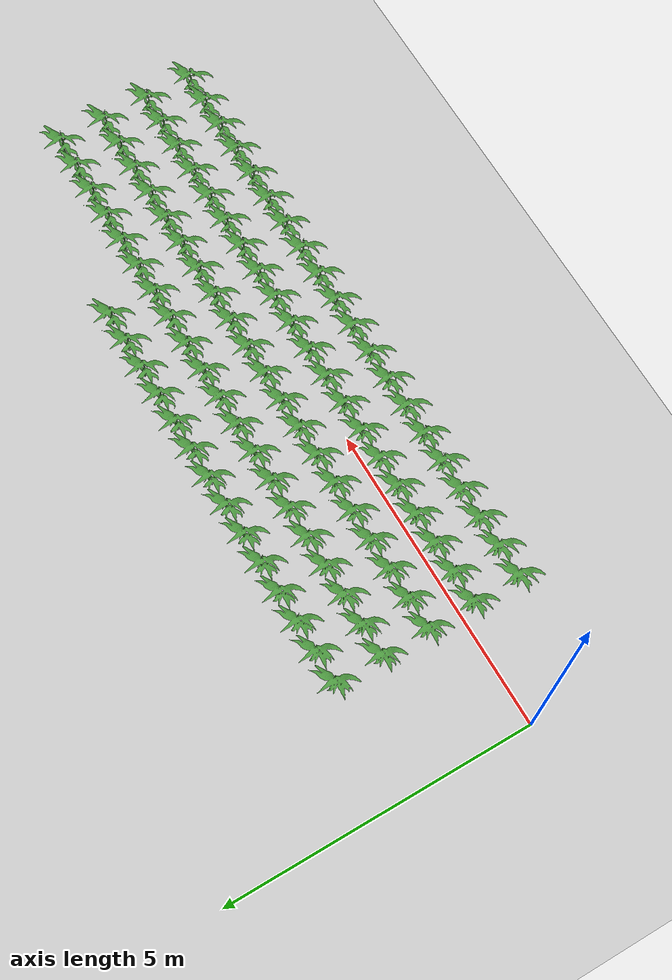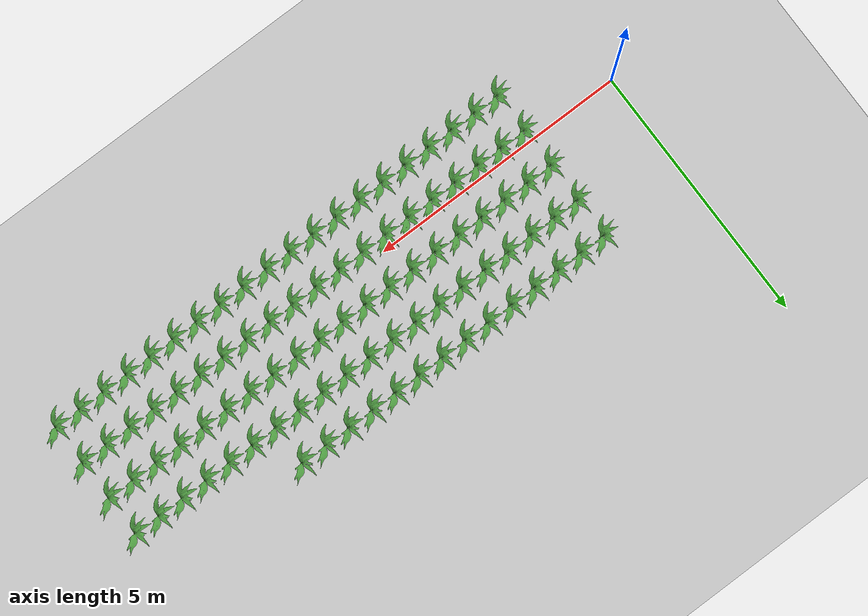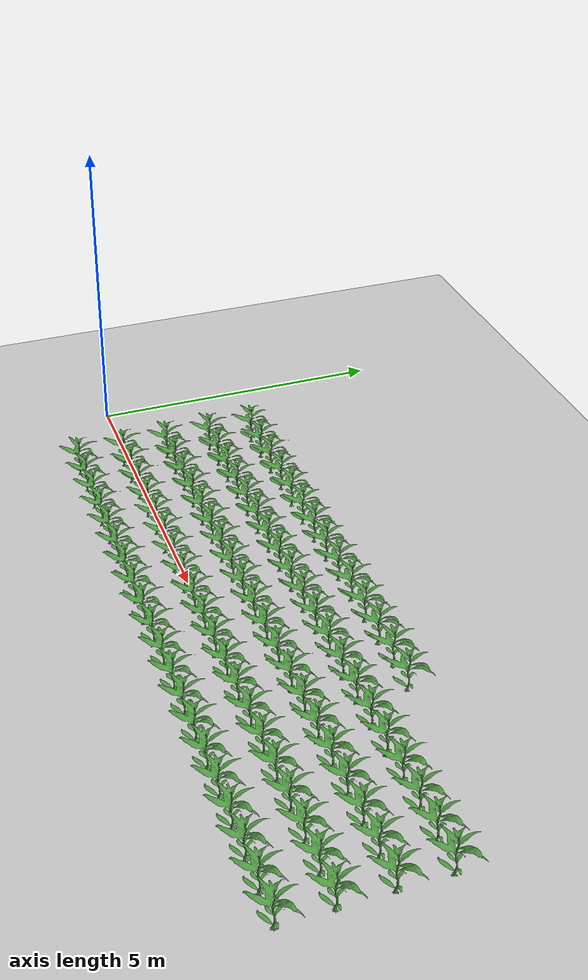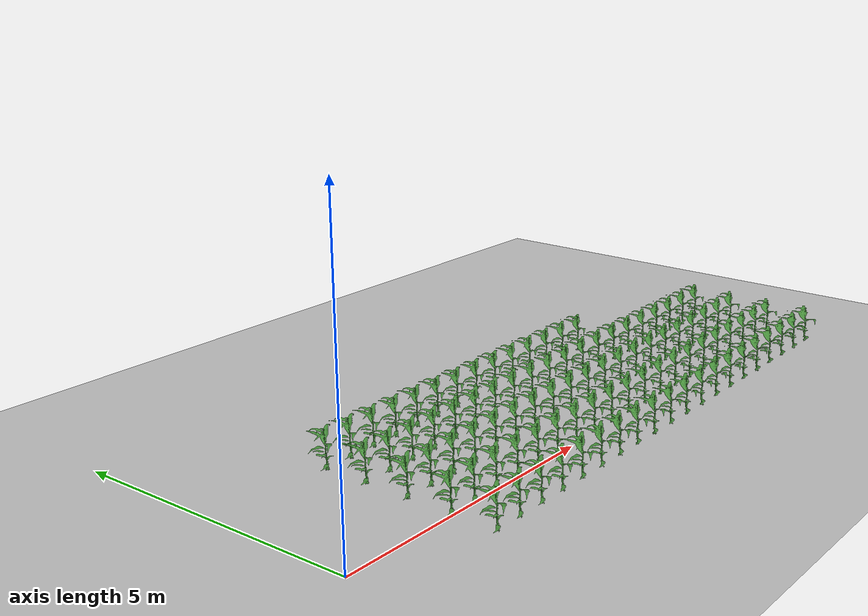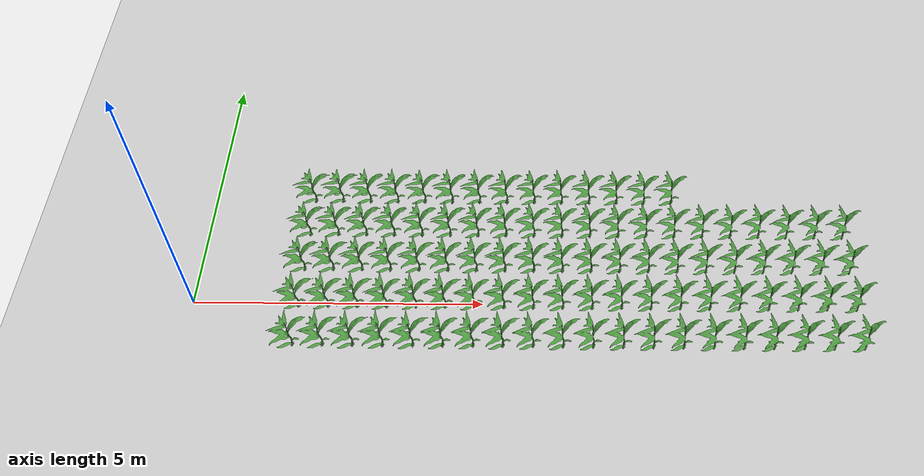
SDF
<sdf version="1.7">
 <world name="default">
  <model name="ground_plane">
   <static>1</static>
   <link name="link">
    <collision name="collision">
     <geometry><plane><normal>0 0 1</normal><size>100 100</size></plane></geometry>
     <surface>
      <contact><collide_bitmask>65535</collide_bitmask></contact>
      <friction><ode><mu>100</mu><mu2>50</mu2></ode></friction>
     </surface>
    </collision>
    <visual name="visual">
     <cast_shadows>0</cast_shadows>
     <geometry><plane><normal>0 0 1</normal><size>100 100</size></plane></geometry>
     <material>
      <script><uri>file://media/materials/scripts/gazebo.material</uri><name>Gazebo/Grey</name></script>
     </material>
    </visual>
   </link>
  </model>
  <model name="bush_1_nc_0">
   <static>1</static>
   <link name="link">
    <visual name="visual">
     <geometry>
      <mesh><uri>model://corn_stalk/meshes/corn_1.obj</uri><scale>0.002 0.002 0.001</scale></mesh>
     </geometry>
     <material>
      <script><uri>file://media/materials/scripts/gazebo.material</uri><name>Gazebo/Grass</name></script>
     </material>
    </visual>
   </link>
   <pose>0.0 0.762 0.171977 0 -0 0</pose>
  </model>
  <model name="bush_1_nc_1">
   <static>1</static>
   <link name="link">
    <visual name="visual">
     <geometry>
      <mesh><uri>model://corn_stalk/meshes/corn_1.obj</uri><scale>0.002 0.002 0.001</scale></mesh>
     </geometry>
     <material>
      <script><uri>file://media/materials/scripts/gazebo.material</uri><name>Gazebo/Grass</name></script>
     </material>
    </visual>
   </link>
   <pose>0.5 0.762 0.171977 0 -0 0</pose>
  </model>
  <model name="bush_1_nc_2">
   <static>1</static>
   <link name="link">
    <visual name="visual">
     <geometry>
      <mesh><uri>model://corn_stalk/meshes/corn_1.obj</uri><scale>0.002 0.002 0.001</scale></mesh>
     </geometry>
     <material>
      <script><uri>file://media/materials/scripts/gazebo.material</uri><name>Gazebo/Grass</name></script>
     </material>
    </visual>
   </link>
   <pose>1.0 0.762 0.171977 0 -0 0</pose>
  </model>
  <model name="bush_1_nc_3">
   <static>1</static>
   <link name="link">
    <visual name="visual">
     <geometry>
      <mesh><uri>model://corn_stalk/meshes/corn_1.obj</uri><scale>0.002 0.002 0.001</scale></mesh>
     </geometry>
     <material>
      <script><uri>file://media/materials/scripts/gazebo.material</uri><name>Gazebo/Grass</name></script>
     </material>
    </visual>
   </link>
   <pose>1.5 0.762 0.171977 0 -0 0</pose>
  </model>
  <model name="bush_1_nc_4">
   <static>1</static>
   <link name="link">
    <visual name="visual">
     <geometry>
      <mesh><uri>model://corn_stalk/meshes/corn_1.obj</uri><scale>0.002 0.002 0.001</scale></mesh>
     </geometry>
     <material>
      <script><uri>file://media/materials/scripts/gazebo.material</uri><name>Gazebo/Grass</name></script>
     </material>
    </visual>
   </link>
   <pose>2.0 0.762 0.171977 0 -0 0</pose>
  </model>
  <model name="bush_1_nc_5">
   <static>1</static>
   <link name="link">
    <visual name="visual">
     <geometry>
      <mesh><uri>model://corn_stalk/meshes/corn_1.obj</uri><scale>0.002 0.002 0.001</scale></mesh>
     </geometry>
     <material>
      <script><uri>file://media/materials/scripts/gazebo.material</uri><name>Gazebo/Grass</name></script>
     </material>
    </visual>
   </link>
   <pose>2.5 0.762 0.171977 0 -0 0</pose>
  </model>
  <model name="bush_1_nc_6">
   <static>1</static>
   <link name="link">
    <visual name="visual">
     <geometry>
      <mesh><uri>model://corn_stalk/meshes/corn_1.obj</uri><scale>0.002 0.002 0.001</scale></mesh>
     </geometry>
     <material>
      <script><uri>file://media/materials/scripts/gazebo.material</uri><name>Gazebo/Grass</name></script>
     </material>
    </visual>
   </link>
   <pose>3.0 0.762 0.171977 0 -0 0</pose>
  </model>
  <model name="bush_1_nc_7">
   <static>1</static>
   <link name="link">
    <visual name="visual">
     <geometry>
      <mesh><uri>model://corn_stalk/meshes/corn_1.obj</uri><scale>0.002 0.002 0.001</scale></mesh>
     </geometry>
     <material>
      <script><uri>file://media/materials/scripts/gazebo.material</uri><name>Gazebo/Grass</name></script>
     </material>
    </visual>
   </link>
   <pose>3.5 0.762 0.171977 0 -0 0</pose>
  </model>
  <model name="bush_1_nc_8">
   <static>1</static>
   <link name="link">
    <visual name="visual">
     <geometry>
      <mesh><uri>model://corn_stalk/meshes/corn_1.obj</uri><scale>0.002 0.002 0.001</scale></mesh>
     </geometry>
     <material>
      <script><uri>file://media/materials/scripts/gazebo.material</uri><name>Gazebo/Grass</name></script>
     </material>
    </visual>
   </link>
   <pose>4.0 0.762 0.171977 0 -0 0</pose>
  </model>
  <model name="bush_1_nc_9">
   <static>1</static>
   <link name="link">
    <visual name="visual">
     <geometry>
      <mesh><uri>model://corn_stalk/meshes/corn_1.obj</uri><scale>0.002 0.002 0.001</scale></mesh>
     </geometry>
     <material>
      <script><uri>file://media/materials/scripts/gazebo.material</uri><name>Gazebo/Grass</name></script>
     </material>
    </visual>
   </link>
   <pose>4.5 0.762 0.171977 0 -0 0</pose>
  </model>
  <model name="bush_1_nc_10">
   <static>1</static>
   <link name="link">
    <visual name="visual">
     <geometry>
      <mesh><uri>model://corn_stalk/meshes/corn_1.obj</uri><scale>0.002 0.002 0.001</scale></mesh>
     </geometry>
     <material>
      <script><uri>file://media/materials/scripts/gazebo.material</uri><name>Gazebo/Grass</name></script>
     </material>
    </visual>
   </link>
   <pose>5.0 0.762 0.171977 0 -0 0</pose>
  </model>
  <model name="bush_1_nc_11">
   <static>1</static>
   <link name="link">
    <visual name="visual">
     <geometry>
      <mesh><uri>model://corn_stalk/meshes/corn_1.obj</uri><scale>0.002 0.002 0.001</scale></mesh>
     </geometry>
     <material>
      <script><uri>file://media/materials/scripts/gazebo.material</uri><name>Gazebo/Grass</name></script>
     </material>
    </visual>
   </link>
   <pose>5.5 0.762 0.171977 0 -0 0</pose>
  </model>
  <model name="bush_1_nc_12">
   <static>1</static>
   <link name="link">
    <visual name="visual">
     <geometry>
      <mesh><uri>model://corn_stalk/meshes/corn_1.obj</uri><scale>0.002 0.002 0.001</scale></mesh>
     </geometry>
     <material>
      <script><uri>file://media/materials/scripts/gazebo.material</uri><name>Gazebo/Grass</name></script>
     </material>
    </visual>
   </link>
   <pose>6.0 0.762 0.171977 0 -0 0</pose>
  </model>
  <model name="bush_1_nc_13">
   <static>1</static>
   <link name="link">
    <visual name="visual">
     <geometry>
      <mesh><uri>model://corn_stalk/meshes/corn_1.obj</uri><scale>0.002 0.002 0.001</scale></mesh>
     </geometry>
     <material>
      <script><uri>file://media/materials/scripts/gazebo.material</uri><name>Gazebo/Grass</name></script>
     </material>
    </visual>
   </link>
   <pose>6.5 0.762 0.171977 0 -0 0</pose>
  </model>
  <model name="bush_1_nc_14">
   <static>1</static>
   <link name="link">
    <visual name="visual">
     <geometry>
      <mesh><uri>model://corn_stalk/meshes/corn_1.obj</uri><scale>0.002 0.002 0.001</scale></mesh>
     </geometry>
     <material>
      <script><uri>file://media/materials/scripts/gazebo.material</uri><name>Gazebo/Grass</name></script>
     </material>
    </visual>
   </link>
   <pose>7.0 0.762 0.171977 0 -0 0</pose>
  </model>
  <model name="bush_1_nc_15">
   <static>1</static>
   <link name="link">
    <visual name="visual">
     <geometry>
      <mesh><uri>model://corn_stalk/meshes/corn_1.obj</uri><scale>0.002 0.002 0.001</scale></mesh>
     </geometry>
     <material>
      <script><uri>file://media/materials/scripts/gazebo.material</uri><name>Gazebo/Grass</name></script>
     </material>
    </visual>
   </link>
   <pose>7.5 0.762 0.171977 0 -0 0</pose>
  </model>
  <model name="bush_1_nc_16">
   <static>1</static>
   <link name="link">
    <visual name="visual">
     <geometry>
      <mesh><uri>model://corn_stalk/meshes/corn_1.obj</uri><scale>0.002 0.002 0.001</scale></mesh>
     </geometry>
     <material>
      <script><uri>file://media/materials/scripts/gazebo.material</uri><name>Gazebo/Grass</name></script>
     </material>
    </visual>
   </link>
   <pose>8.0 0.762 0.171977 0 -0 0</pose>
  </model>
  <model name="bush_1_nc_17">
   <static>1</static>
   <link name="link">
    <visual name="visual">
     <geometry>
      <mesh><uri>model://corn_stalk/meshes/corn_1.obj</uri><scale>0.002 0.002 0.001</scale></mesh>
     </geometry>
     <material>
      <script><uri>file://media/materials/scripts/gazebo.material</uri><name>Gazebo/Grass</name></script>
     </material>
    </visual>
   </link>
   <pose>8.5 0.762 0.171977 0 -0 0</pose>
  </model>
  <model name="bush_1_nc_18">
   <static>1</static>
   <link name="link">
    <visual name="visual">
     <geometry>
      <mesh><uri>model://corn_stalk/meshes/corn_1.obj</uri><scale>0.002 0.002 0.001</scale></mesh>
     </geometry>
     <material>
      <script><uri>file://media/materials/scripts/gazebo.material</uri><name>Gazebo/Grass</name></script>
     </material>
    </visual>
   </link>
   <pose>9.0 0.762 0.171977 0 -0 0</pose>
  </model>
  <model name="bush_1_nc_19">
   <static>1</static>
   <link name="link">
    <visual name="visual">
     <geometry>
      <mesh><uri>model://corn_stalk/meshes/corn_1.obj</uri><scale>0.002 0.002 0.001</scale></mesh>
     </geometry>
     <material>
      <script><uri>file://media/materials/scripts/gazebo.material</uri><name>Gazebo/Grass</name></script>
     </material>
    </visual>
   </link>
   <pose>9.5 0.762 0.171977 0 -0 0</pose>
  </model>
  <model name="bush_1_nc_40">
   <static>1</static>
   <link name="link">
    <visual name="visual">
     <geometry>
      <mesh><uri>model://corn_stalk/meshes/corn_1.obj</uri><scale>0.002 0.002 0.001</scale></mesh>
     </geometry>
     <material>
      <script><uri>file://media/materials/scripts/gazebo.material</uri><name>Gazebo/Grass</name></script>
     </material>
    </visual>
   </link>
   <pose>0.0 1.524 0.171977 0 -0 0</pose>
  </model>
  <model name="bush_1_nc_41">
   <static>1</static>
   <link name="link">
    <visual name="visual">
     <geometry>
      <mesh><uri>model://corn_stalk/meshes/corn_1.obj</uri><scale>0.002 0.002 0.001</scale></mesh>
     </geometry>
     <material>
      <script><uri>file://media/materials/scripts/gazebo.material</uri><name>Gazebo/Grass</name></script>
     </material>
    </visual>
   </link>
   <pose>0.5 1.524 0.171977 0 -0 0</pose>
  </model>
  <model name="bush_1_nc_42">
   <static>1</static>
   <link name="link">
    <visual name="visual">
     <geometry>
      <mesh><uri>model://corn_stalk/meshes/corn_1.obj</uri><scale>0.002 0.002 0.001</scale></mesh>
     </geometry>
     <material>
      <script><uri>file://media/materials/scripts/gazebo.material</uri><name>Gazebo/Grass</name></script>
     </material>
    </visual>
   </link>
   <pose>1.0 1.524 0.171977 0 -0 0</pose>
  </model>
  <model name="bush_1_nc_43">
   <static>1</static>
   <link name="link">
    <visual name="visual">
     <geometry>
      <mesh><uri>model://corn_stalk/meshes/corn_1.obj</uri><scale>0.002 0.002 0.001</scale></mesh>
     </geometry>
     <material>
      <script><uri>file://media/materials/scripts/gazebo.material</uri><name>Gazebo/Grass</name></script>
     </material>
    </visual>
   </link>
   <pose>1.5 1.524 0.171977 0 -0 0</pose>
  </model>
  <model name="bush_1_nc_44">
   <static>1</static>
   <link name="link">
    <visual name="visual">
     <geometry>
      <mesh><uri>model://corn_stalk/meshes/corn_1.obj</uri><scale>0.002 0.002 0.001</scale></mesh>
     </geometry>
     <material>
      <script><uri>file://media/materials/scripts/gazebo.material</uri><name>Gazebo/Grass</name></script>
     </material>
    </visual>
   </link>
   <pose>2.0 1.524 0.171977 0 -0 0</pose>
  </model>
  <model name="bush_1_nc_45">
   <static>1</static>
   <link name="link">
    <visual name="visual">
     <geometry>
      <mesh><uri>model://corn_stalk/meshes/corn_1.obj</uri><scale>0.002 0.002 0.001</scale></mesh>
     </geometry>
     <material>
      <script><uri>file://media/materials/scripts/gazebo.material</uri><name>Gazebo/Grass</name></script>
     </material>
    </visual>
   </link>
   <pose>2.5 1.524 0.171977 0 -0 0</pose>
  </model>
  <model name="bush_1_nc_46">
   <static>1</static>
   <link name="link">
    <visual name="visual">
     <geometry>
      <mesh><uri>model://corn_stalk/meshes/corn_1.obj</uri><scale>0.002 0.002 0.001</scale></mesh>
     </geometry>
     <material>
      <script><uri>file://media/materials/scripts/gazebo.material</uri><name>Gazebo/Grass</name></script>
     </material>
    </visual>
   </link>
   <pose>3.0 1.524 0.171977 0 -0 0</pose>
  </model>
  <model name="bush_1_nc_47">
   <static>1</static>
   <link name="link">
    <visual name="visual">
     <geometry>
      <mesh><uri>model://corn_stalk/meshes/corn_1.obj</uri><scale>0.002 0.002 0.001</scale></mesh>
     </geometry>
     <material>
      <script><uri>file://media/materials/scripts/gazebo.material</uri><name>Gazebo/Grass</name></script>
     </material>
    </visual>
   </link>
   <pose>3.5 1.524 0.171977 0 -0 0</pose>
  </model>
  <model name="bush_1_nc_48">
   <static>1</static>
   <link name="link">
    <visual name="visual">
     <geometry>
      <mesh><uri>model://corn_stalk/meshes/corn_1.obj</uri><scale>0.002 0.002 0.001</scale></mesh>
     </geometry>
     <material>
      <script><uri>file://media/materials/scripts/gazebo.material</uri><name>Gazebo/Grass</name></script>
     </material>
    </visual>
   </link>
   <pose>4.0 1.524 0.171977 0 -0 0</pose>
  </model>
  <model name="bush_1_nc_49">
   <static>1</static>
   <link name="link">
    <visual name="visual">
     <geometry>
      <mesh><uri>model://corn_stalk/meshes/corn_1.obj</uri><scale>0.002 0.002 0.001</scale></mesh>
     </geometry>
     <material>
      <script><uri>file://media/materials/scripts/gazebo.material</uri><name>Gazebo/Grass</name></script>
     </material>
    </visual>
   </link>
   <pose>4.5 1.524 0.171977 0 -0 0</pose>
  </model>
  <model name="bush_1_nc_50">
   <static>1</static>
   <link name="link">
    <visual name="visual">
     <geometry>
      <mesh><uri>model://corn_stalk/meshes/corn_1.obj</uri><scale>0.002 0.002 0.001</scale></mesh>
     </geometry>
     <material>
      <script><uri>file://media/materials/scripts/gazebo.material</uri><name>Gazebo/Grass</name></script>
     </material>
    </visual>
   </link>
   <pose>5.0 1.524 0.171977 0 -0 0</pose>
  </model>
  <model name="bush_1_nc_51">
   <static>1</static>
   <link name="link">
    <visual name="visual">
     <geometry>
      <mesh><uri>model://corn_stalk/meshes/corn_1.obj</uri><scale>0.002 0.002 0.001</scale></mesh>
     </geometry>
     <material>
      <script><uri>file://media/materials/scripts/gazebo.material</uri><name>Gazebo/Grass</name></script>
     </material>
    </visual>
   </link>
   <pose>5.5 1.524 0.171977 0 -0 0</pose>
  </model>
  <model name="bush_1_nc_52">
   <static>1</static>
   <link name="link">
    <visual name="visual">
     <geometry>
      <mesh><uri>model://corn_stalk/meshes/corn_1.obj</uri><scale>0.002 0.002 0.001</scale></mesh>
     </geometry>
     <material>
      <script><uri>file://media/materials/scripts/gazebo.material</uri><name>Gazebo/Grass</name></script>
     </material>
    </visual>
   </link>
   <pose>6.0 1.524 0.171977 0 -0 0</pose>
  </model>
  <model name="bush_1_nc_53">
   <static>1</static>
   <link name="link">
    <visual name="visual">
     <geometry>
      <mesh><uri>model://corn_stalk/meshes/corn_1.obj</uri><scale>0.002 0.002 0.001</scale></mesh>
     </geometry>
     <material>
      <script><uri>file://media/materials/scripts/gazebo.material</uri><name>Gazebo/Grass</name></script>
     </material>
    </visual>
   </link>
   <pose>6.5 1.524 0.171977 0 -0 0</pose>
  </model>
  <model name="bush_1_nc_54">
   <static>1</static>
   <link name="link">
    <visual name="visual">
     <geometry>
      <mesh><uri>model://corn_stalk/meshes/corn_1.obj</uri><scale>0.002 0.002 0.001</scale></mesh>
     </geometry>
     <material>
      <script><uri>file://media/materials/scripts/gazebo.material</uri><name>Gazebo/Grass</name></script>
     </material>
    </visual>
   </link>
   <pose>7.0 1.524 0.171977 0 -0 0</pose>
  </model>
  <model name="bush_1_nc_55">
   <static>1</static>
   <link name="link">
    <visual name="visual">
     <geometry>
      <mesh><uri>model://corn_stalk/meshes/corn_1.obj</uri><scale>0.002 0.002 0.001</scale></mesh>
     </geometry>
     <material>
      <script><uri>file://media/materials/scripts/gazebo.material</uri><name>Gazebo/Grass</name></script>
     </material>
    </visual>
   </link>
   <pose>7.5 1.524 0.171977 0 -0 0</pose>
  </model>
  <model name="bush_1_nc_56">
   <static>1</static>
   <link name="link">
    <visual name="visual">
     <geometry>
      <mesh><uri>model://corn_stalk/meshes/corn_1.obj</uri><scale>0.002 0.002 0.001</scale></mesh>
     </geometry>
     <material>
      <script><uri>file://media/materials/scripts/gazebo.material</uri><name>Gazebo/Grass</name></script>
     </material>
    </visual>
   </link>
   <pose>8.0 1.524 0.171977 0 -0 0</pose>
  </model>
  <model name="bush_1_nc_57">
   <static>1</static>
   <link name="link">
    <visual name="visual">
     <geometry>
      <mesh><uri>model://corn_stalk/meshes/corn_1.obj</uri><scale>0.002 0.002 0.001</scale></mesh>
     </geometry>
     <material>
      <script><uri>file://media/materials/scripts/gazebo.material</uri><name>Gazebo/Grass</name></script>
     </material>
    </visual>
   </link>
   <pose>8.5 1.524 0.171977 0 -0 0</pose>
  </model>
  <model name="bush_1_nc_58">
   <static>1</static>
   <link name="link">
    <visual name="visual">
     <geometry>
      <mesh><uri>model://corn_stalk/meshes/corn_1.obj</uri><scale>0.002 0.002 0.001</scale></mesh>
     </geometry>
     <material>
      <script><uri>file://media/materials/scripts/gazebo.material</uri><name>Gazebo/Grass</name></script>
     </material>
    </visual>
   </link>
   <pose>9.0 1.524 0.171977 0 -0 0</pose>
  </model>
  <model name="bush_1_nc_59">
   <static>1</static>
   <link name="link">
    <visual name="visual">
     <geometry>
      <mesh><uri>model://corn_stalk/meshes/corn_1.obj</uri><scale>0.002 0.002 0.001</scale></mesh>
     </geometry>
     <material>
      <script><uri>file://media/materials/scripts/gazebo.material</uri><name>Gazebo/Grass</name></script>
     </material>
    </visual>
   </link>
   <pose>9.5 1.524 0.171977 0 -0 0</pose>
  </model>
  <model name="bush_1_nc_80">
   <static>1</static>
   <link name="link">
    <visual name="visual">
     <geometry>
      <mesh><uri>model://corn_stalk/meshes/corn_1.obj</uri><scale>0.002 0.002 0.001</scale></mesh>
     </geometry>
     <material>
      <script><uri>file://media/materials/scripts/gazebo.material</uri><name>Gazebo/Grass</name></script>
     </material>
    </visual>
   </link>
   <pose>0.0 2.286 0.171977 0 -0 0</pose>
  </model>
  <model name="bush_1_nc_81">
   <static>1</static>
   <link name="link">
    <visual name="visual">
     <geometry>
      <mesh><uri>model://corn_stalk/meshes/corn_1.obj</uri><scale>0.002 0.002 0.001</scale></mesh>
     </geometry>
     <material>
      <script><uri>file://media/materials/scripts/gazebo.material</uri><name>Gazebo/Grass</name></script>
     </material>
    </visual>
   </link>
   <pose>0.5 2.286 0.171977 0 -0 0</pose>
  </model>
  <model name="bush_1_nc_82">
   <static>1</static>
   <link name="link">
    <visual name="visual">
     <geometry>
      <mesh><uri>model://corn_stalk/meshes/corn_1.obj</uri><scale>0.002 0.002 0.001</scale></mesh>
     </geometry>
     <material>
      <script><uri>file://media/materials/scripts/gazebo.material</uri><name>Gazebo/Grass</name></script>
     </material>
    </visual>
   </link>
   <pose>1.0 2.286 0.171977 0 -0 0</pose>
  </model>
  <model name="bush_1_nc_83">
   <static>1</static>
   <link name="link">
    <visual name="visual">
     <geometry>
      <mesh><uri>model://corn_stalk/meshes/corn_1.obj</uri><scale>0.002 0.002 0.001</scale></mesh>
     </geometry>
     <material>
      <script><uri>file://media/materials/scripts/gazebo.material</uri><name>Gazebo/Grass</name></script>
     </material>
    </visual>
   </link>
   <pose>1.5 2.286 0.171977 0 -0 0</pose>
  </model>
  <model name="bush_1_nc_84">
   <static>1</static>
   <link name="link">
    <visual name="visual">
     <geometry>
      <mesh><uri>model://corn_stalk/meshes/corn_1.obj</uri><scale>0.002 0.002 0.001</scale></mesh>
     </geometry>
     <material>
      <script><uri>file://media/materials/scripts/gazebo.material</uri><name>Gazebo/Grass</name></script>
     </material>
    </visual>
   </link>
   <pose>2.0 2.286 0.171977 0 -0 0</pose>
  </model>
  <model name="bush_1_nc_85">
   <static>1</static>
   <link name="link">
    <visual name="visual">
     <geometry>
      <mesh><uri>model://corn_stalk/meshes/corn_1.obj</uri><scale>0.002 0.002 0.001</scale></mesh>
     </geometry>
     <material>
      <script><uri>file://media/materials/scripts/gazebo.material</uri><name>Gazebo/Grass</name></script>
     </material>
    </visual>
   </link>
   <pose>2.5 2.286 0.171977 0 -0 0</pose>
  </model>
  <model name="bush_1_nc_86">
   <static>1</static>
   <link name="link">
    <visual name="visual">
     <geometry>
      <mesh><uri>model://corn_stalk/meshes/corn_1.obj</uri><scale>0.002 0.002 0.001</scale></mesh>
     </geometry>
     <material>
      <script><uri>file://media/materials/scripts/gazebo.material</uri><name>Gazebo/Grass</name></script>
     </material>
    </visual>
   </link>
   <pose>3.0 2.286 0.171977 0 -0 0</pose>
  </model>
  <model name="bush_1_nc_87">
   <static>1</static>
   <link name="link">
    <visual name="visual">
     <geometry>
      <mesh><uri>model://corn_stalk/meshes/corn_1.obj</uri><scale>0.002 0.002 0.001</scale></mesh>
     </geometry>
     <material>
      <script><uri>file://media/materials/scripts/gazebo.material</uri><name>Gazebo/Grass</name></script>
     </material>
    </visual>
   </link>
   <pose>3.5 2.286 0.171977 0 -0 0</pose>
  </model>
  <model name="bush_1_nc_88">
   <static>1</static>
   <link name="link">
    <visual name="visual">
     <geometry>
      <mesh><uri>model://corn_stalk/meshes/corn_1.obj</uri><scale>0.002 0.002 0.001</scale></mesh>
     </geometry>
     <material>
      <script><uri>file://media/materials/scripts/gazebo.material</uri><name>Gazebo/Grass</name></script>
     </material>
    </visual>
   </link>
   <pose>4.0 2.286 0.171977 0 -0 0</pose>
  </model>
  <model name="bush_1_nc_89">
   <static>1</static>
   <link name="link">
    <visual name="visual">
     <geometry>
      <mesh><uri>model://corn_stalk/meshes/corn_1.obj</uri><scale>0.002 0.002 0.001</scale></mesh>
     </geometry>
     <material>
      <script><uri>file://media/materials/scripts/gazebo.material</uri><name>Gazebo/Grass</name></script>
     </material>
    </visual>
   </link>
   <pose>4.5 2.286 0.171977 0 -0 0</pose>
  </model>
  <model name="bush_1_nc_90">
   <static>1</static>
   <link name="link">
    <visual name="visual">
     <geometry>
      <mesh><uri>model://corn_stalk/meshes/corn_1.obj</uri><scale>0.002 0.002 0.001</scale></mesh>
     </geometry>
     <material>
      <script><uri>file://media/materials/scripts/gazebo.material</uri><name>Gazebo/Grass</name></script>
     </material>
    </visual>
   </link>
   <pose>5.0 2.286 0.171977 0 -0 0</pose>
  </model>
  <model name="bush_1_nc_91">
   <static>1</static>
   <link name="link">
    <visual name="visual">
     <geometry>
      <mesh><uri>model://corn_stalk/meshes/corn_1.obj</uri><scale>0.002 0.002 0.001</scale></mesh>
     </geometry>
     <material>
      <script><uri>file://media/materials/scripts/gazebo.material</uri><name>Gazebo/Grass</name></script>
     </material>
    </visual>
   </link>
   <pose>5.5 2.286 0.171977 0 -0 0</pose>
  </model>
  <model name="bush_1_nc_92">
   <static>1</static>
   <link name="link">
    <visual name="visual">
     <geometry>
      <mesh><uri>model://corn_stalk/meshes/corn_1.obj</uri><scale>0.002 0.002 0.001</scale></mesh>
     </geometry>
     <material>
      <script><uri>file://media/materials/scripts/gazebo.material</uri><name>Gazebo/Grass</name></script>
     </material>
    </visual>
   </link>
   <pose>6.0 2.286 0.171977 0 -0 0</pose>
  </model>
  <model name="bush_1_nc_93">
   <static>1</static>
   <link name="link">
    <visual name="visual">
     <geometry>
      <mesh><uri>model://corn_stalk/meshes/corn_1.obj</uri><scale>0.002 0.002 0.001</scale></mesh>
     </geometry>
     <material>
      <script><uri>file://media/materials/scripts/gazebo.material</uri><name>Gazebo/Grass</name></script>
     </material>
    </visual>
   </link>
   <pose>6.5 2.286 0.171977 0 -0 0</pose>
  </model>
  <model name="bush_1_nc_94">
   <static>1</static>
   <link name="link">
    <visual name="visual">
     <geometry>
      <mesh><uri>model://corn_stalk/meshes/corn_1.obj</uri><scale>0.002 0.002 0.001</scale></mesh>
     </geometry>
     <material>
      <script><uri>file://media/materials/scripts/gazebo.material</uri><name>Gazebo/Grass</name></script>
     </material>
    </visual>
   </link>
   <pose>7.0 2.286 0.171977 0 -0 0</pose>
  </model>
  <model name="bush_1_nc_95">
   <static>1</static>
   <link name="link">
    <visual name="visual">
     <geometry>
      <mesh><uri>model://corn_stalk/meshes/corn_1.obj</uri><scale>0.002 0.002 0.001</scale></mesh>
     </geometry>
     <material>
      <script><uri>file://media/materials/scripts/gazebo.material</uri><name>Gazebo/Grass</name></script>
     </material>
    </visual>
   </link>
   <pose>7.5 2.286 0.171977 0 -0 0</pose>
  </model>
  <model name="bush_1_nc_96">
   <static>1</static>
   <link name="link">
    <visual name="visual">
     <geometry>
      <mesh><uri>model://corn_stalk/meshes/corn_1.obj</uri><scale>0.002 0.002 0.001</scale></mesh>
     </geometry>
     <material>
      <script><uri>file://media/materials/scripts/gazebo.material</uri><name>Gazebo/Grass</name></script>
     </material>
    </visual>
   </link>
   <pose>8.0 2.286 0.171977 0 -0 0</pose>
  </model>
  <model name="bush_1_nc_97">
   <static>1</static>
   <link name="link">
    <visual name="visual">
     <geometry>
      <mesh><uri>model://corn_stalk/meshes/corn_1.obj</uri><scale>0.002 0.002 0.001</scale></mesh>
     </geometry>
     <material>
      <script><uri>file://media/materials/scripts/gazebo.material</uri><name>Gazebo/Grass</name></script>
     </material>
    </visual>
   </link>
   <pose>8.5 2.286 0.171977 0 -0 0</pose>
  </model>
  <model name="bush_1_nc_98">
   <static>1</static>
   <link name="link">
    <visual name="visual">
     <geometry>
      <mesh><uri>model://corn_stalk/meshes/corn_1.obj</uri><scale>0.002 0.002 0.001</scale></mesh>
     </geometry>
     <material>
      <script><uri>file://media/materials/scripts/gazebo.material</uri><name>Gazebo/Grass</name></script>
     </material>
    </visual>
   </link>
   <pose>9.0 2.286 0.171977 0 -0 0</pose>
  </model>
  <model name="bush_1_nc_99">
   <static>1</static>
   <link name="link">
    <visual name="visual">
     <geometry>
      <mesh><uri>model://corn_stalk/meshes/corn_1.obj</uri><scale>0.002 0.002 0.001</scale></mesh>
     </geometry>
     <material>
      <script><uri>file://media/materials/scripts/gazebo.material</uri><name>Gazebo/Grass</name></script>
     </material>
    </visual>
   </link>
   <pose>9.5 2.286 0.171977 0 -0 0</pose>
  </model>
  <model name="bush_1_nc_120">
   <static>1</static>
   <link name="link">
    <visual name="visual">
     <geometry>
      <mesh><uri>model://corn_stalk/meshes/corn_1.obj</uri><scale>0.002 0.002 0.001</scale></mesh>
     </geometry>
     <material>
      <script><uri>file://media/materials/scripts/gazebo.material</uri><name>Gazebo/Grass</name></script>
     </material>
    </visual>
   </link>
   <pose>0.0 3.048 0.171977 0 -0 0</pose>
  </model>
  <model name="bush_1_nc_121">
   <static>1</static>
   <link name="link">
    <visual name="visual">
     <geometry>
      <mesh><uri>model://corn_stalk/meshes/corn_1.obj</uri><scale>0.002 0.002 0.001</scale></mesh>
     </geometry>
     <material>
      <script><uri>file://media/materials/scripts/gazebo.material</uri><name>Gazebo/Grass</name></script>
     </material>
    </visual>
   </link>
   <pose>0.5 3.048 0.171977 0 -0 0</pose>
  </model>
  <model name="bush_1_nc_122">
   <static>1</static>
   <link name="link">
    <visual name="visual">
     <geometry>
      <mesh><uri>model://corn_stalk/meshes/corn_1.obj</uri><scale>0.002 0.002 0.001</scale></mesh>
     </geometry>
     <material>
      <script><uri>file://media/materials/scripts/gazebo.material</uri><name>Gazebo/Grass</name></script>
     </material>
    </visual>
   </link>
   <pose>1.0 3.048 0.171977 0 -0 0</pose>
  </model>
  <model name="bush_1_nc_123">
   <static>1</static>
   <link name="link">
    <visual name="visual">
     <geometry>
      <mesh><uri>model://corn_stalk/meshes/corn_1.obj</uri><scale>0.002 0.002 0.001</scale></mesh>
     </geometry>
     <material>
      <script><uri>file://media/materials/scripts/gazebo.material</uri><name>Gazebo/Grass</name></script>
     </material>
    </visual>
   </link>
   <pose>1.5 3.048 0.171977 0 -0 0</pose>
  </model>
  <model name="bush_1_nc_124">
   <static>1</static>
   <link name="link">
    <visual name="visual">
     <geometry>
      <mesh><uri>model://corn_stalk/meshes/corn_1.obj</uri><scale>0.002 0.002 0.001</scale></mesh>
     </geometry>
     <material>
      <script><uri>file://media/materials/scripts/gazebo.material</uri><name>Gazebo/Grass</name></script>
     </material>
    </visual>
   </link>
   <pose>2.0 3.048 0.171977 0 -0 0</pose>
  </model>
  <model name="bush_1_nc_125">
   <static>1</static>
   <link name="link">
    <visual name="visual">
     <geometry>
      <mesh><uri>model://corn_stalk/meshes/corn_1.obj</uri><scale>0.002 0.002 0.001</scale></mesh>
     </geometry>
     <material>
      <script><uri>file://media/materials/scripts/gazebo.material</uri><name>Gazebo/Grass</name></script>
     </material>
    </visual>
   </link>
   <pose>2.5 3.048 0.171977 0 -0 0</pose>
  </model>
  <model name="bush_1_nc_126">
   <static>1</static>
   <link name="link">
    <visual name="visual">
     <geometry>
      <mesh><uri>model://corn_stalk/meshes/corn_1.obj</uri><scale>0.002 0.002 0.001</scale></mesh>
     </geometry>
     <material>
      <script><uri>file://media/materials/scripts/gazebo.material</uri><name>Gazebo/Grass</name></script>
     </material>
    </visual>
   </link>
   <pose>3.0 3.048 0.171977 0 -0 0</pose>
  </model>
  <model name="bush_1_nc_127">
   <static>1</static>
   <link name="link">
    <visual name="visual">
     <geometry>
      <mesh><uri>model://corn_stalk/meshes/corn_1.obj</uri><scale>0.002 0.002 0.001</scale></mesh>
     </geometry>
     <material>
      <script><uri>file://media/materials/scripts/gazebo.material</uri><name>Gazebo/Grass</name></script>
     </material>
    </visual>
   </link>
   <pose>3.5 3.048 0.171977 0 -0 0</pose>
  </model>
  <model name="bush_1_nc_128">
   <static>1</static>
   <link name="link">
    <visual name="visual">
     <geometry>
      <mesh><uri>model://corn_stalk/meshes/corn_1.obj</uri><scale>0.002 0.002 0.001</scale></mesh>
     </geometry>
     <material>
      <script><uri>file://media/materials/scripts/gazebo.material</uri><name>Gazebo/Grass</name></script>
     </material>
    </visual>
   </link>
   <pose>4.0 3.048 0.171977 0 -0 0</pose>
  </model>
  <model name="bush_1_nc_129">
   <static>1</static>
   <link name="link">
    <visual name="visual">
     <geometry>
      <mesh><uri>model://corn_stalk/meshes/corn_1.obj</uri><scale>0.002 0.002 0.001</scale></mesh>
     </geometry>
     <material>
      <script><uri>file://media/materials/scripts/gazebo.material</uri><name>Gazebo/Grass</name></script>
     </material>
    </visual>
   </link>
   <pose>4.5 3.048 0.171977 0 -0 0</pose>
  </model>
  <model name="bush_1_nc_130">
   <static>1</static>
   <link name="link">
    <visual name="visual">
     <geometry>
      <mesh><uri>model://corn_stalk/meshes/corn_1.obj</uri><scale>0.002 0.002 0.001</scale></mesh>
     </geometry>
     <material>
      <script><uri>file://media/materials/scripts/gazebo.material</uri><name>Gazebo/Grass</name></script>
     </material>
    </visual>
   </link>
   <pose>5.0 3.048 0.171977 0 -0 0</pose>
  </model>
  <model name="bush_1_nc_131">
   <static>1</static>
   <link name="link">
    <visual name="visual">
     <geometry>
      <mesh><uri>model://corn_stalk/meshes/corn_1.obj</uri><scale>0.002 0.002 0.001</scale></mesh>
     </geometry>
     <material>
      <script><uri>file://media/materials/scripts/gazebo.material</uri><name>Gazebo/Grass</name></script>
     </material>
    </visual>
   </link>
   <pose>5.5 3.048 0.171977 0 -0 0</pose>
  </model>
  <model name="bush_1_nc_132">
   <static>1</static>
   <link name="link">
    <visual name="visual">
     <geometry>
      <mesh><uri>model://corn_stalk/meshes/corn_1.obj</uri><scale>0.002 0.002 0.001</scale></mesh>
     </geometry>
     <material>
      <script><uri>file://media/materials/scripts/gazebo.material</uri><name>Gazebo/Grass</name></script>
     </material>
    </visual>
   </link>
   <pose>6.0 3.048 0.171977 0 -0 0</pose>
  </model>
  <model name="bush_1_nc_133">
   <static>1</static>
   <link name="link">
    <visual name="visual">
     <geometry>
      <mesh><uri>model://corn_stalk/meshes/corn_1.obj</uri><scale>0.002 0.002 0.001</scale></mesh>
     </geometry>
     <material>
      <script><uri>file://media/materials/scripts/gazebo.material</uri><name>Gazebo/Grass</name></script>
     </material>
    </visual>
   </link>
   <pose>6.5 3.048 0.171977 0 -0 0</pose>
  </model>
  <model name="bush_1_nc_134">
   <static>1</static>
   <link name="link">
    <visual name="visual">
     <geometry>
      <mesh><uri>model://corn_stalk/meshes/corn_1.obj</uri><scale>0.002 0.002 0.001</scale></mesh>
     </geometry>
     <material>
      <script><uri>file://media/materials/scripts/gazebo.material</uri><name>Gazebo/Grass</name></script>
     </material>
    </visual>
   </link>
   <pose>7.0 3.048 0.171977 0 -0 0</pose>
  </model>
  <model name="bush_1_nc_135">
   <static>1</static>
   <link name="link">
    <visual name="visual">
     <geometry>
      <mesh><uri>model://corn_stalk/meshes/corn_1.obj</uri><scale>0.002 0.002 0.001</scale></mesh>
     </geometry>
     <material>
      <script><uri>file://media/materials/scripts/gazebo.material</uri><name>Gazebo/Grass</name></script>
     </material>
    </visual>
   </link>
   <pose>7.5 3.048 0.171977 0 -0 0</pose>
  </model>
  <model name="bush_1_nc_136">
   <static>1</static>
   <link name="link">
    <visual name="visual">
     <geometry>
      <mesh><uri>model://corn_stalk/meshes/corn_1.obj</uri><scale>0.002 0.002 0.001</scale></mesh>
     </geometry>
     <material>
      <script><uri>file://media/materials/scripts/gazebo.material</uri><name>Gazebo/Grass</name></script>
     </material>
    </visual>
   </link>
   <pose>8.0 3.048 0.171977 0 -0 0</pose>
  </model>
  <model name="bush_1_nc_137">
   <static>1</static>
   <link name="link">
    <visual name="visual">
     <geometry>
      <mesh><uri>model://corn_stalk/meshes/corn_1.obj</uri><scale>0.002 0.002 0.001</scale></mesh>
     </geometry>
     <material>
      <script><uri>file://media/materials/scripts/gazebo.material</uri><name>Gazebo/Grass</name></script>
     </material>
    </visual>
   </link>
   <pose>8.5 3.048 0.171977 0 -0 0</pose>
  </model>
  <model name="bush_1_nc_138">
   <static>1</static>
   <link name="link">
    <visual name="visual">
     <geometry>
      <mesh><uri>model://corn_stalk/meshes/corn_1.obj</uri><scale>0.002 0.002 0.001</scale></mesh>
     </geometry>
     <material>
      <script><uri>file://media/materials/scripts/gazebo.material</uri><name>Gazebo/Grass</name></script>
     </material>
    </visual>
   </link>
   <pose>9.0 3.048 0.171977 0 -0 0</pose>
  </model>
  <model name="bush_1_nc_139">
   <static>1</static>
   <link name="link">
    <visual name="visual">
     <geometry>
      <mesh><uri>model://corn_stalk/meshes/corn_1.obj</uri><scale>0.002 0.002 0.001</scale></mesh>
     </geometry>
     <material>
      <script><uri>file://media/materials/scripts/gazebo.material</uri><name>Gazebo/Grass</name></script>
     </material>
    </visual>
   </link>
   <pose>9.5 3.048 0.171977 0 -0 0</pose>
  </model>
  <model name="bush_1_nc_160">
   <static>1</static>
   <link name="link">
    <visual name="visual">
     <geometry>
      <mesh><uri>model://corn_stalk/meshes/corn_1.obj</uri><scale>0.002 0.002 0.001</scale></mesh>
     </geometry>
     <material>
      <script><uri>file://media/materials/scripts/gazebo.material</uri><name>Gazebo/Grass</name></script>
     </material>
    </visual>
   </link>
   <pose>0.0 3.81 0.171977 0 -0 0</pose>
  </model>
  <model name="bush_1_nc_161">
   <static>1</static>
   <link name="link">
    <visual name="visual">
     <geometry>
      <mesh><uri>model://corn_stalk/meshes/corn_1.obj</uri><scale>0.002 0.002 0.001</scale></mesh>
     </geometry>
     <material>
      <script><uri>file://media/materials/scripts/gazebo.material</uri><name>Gazebo/Grass</name></script>
     </material>
    </visual>
   </link>
   <pose>0.5 3.81 0.171977 0 -0 0</pose>
  </model>
  <model name="bush_1_nc_162">
   <static>1</static>
   <link name="link">
    <visual name="visual">
     <geometry>
      <mesh><uri>model://corn_stalk/meshes/corn_1.obj</uri><scale>0.002 0.002 0.001</scale></mesh>
     </geometry>
     <material>
      <script><uri>file://media/materials/scripts/gazebo.material</uri><name>Gazebo/Grass</name></script>
     </material>
    </visual>
   </link>
   <pose>1.0 3.81 0.171977 0 -0 0</pose>
  </model>
  <model name="bush_1_nc_163">
   <static>1</static>
   <link name="link">
    <visual name="visual">
     <geometry>
      <mesh><uri>model://corn_stalk/meshes/corn_1.obj</uri><scale>0.002 0.002 0.001</scale></mesh>
     </geometry>
     <material>
      <script><uri>file://media/materials/scripts/gazebo.material</uri><name>Gazebo/Grass</name></script>
     </material>
    </visual>
   </link>
   <pose>1.5 3.81 0.171977 0 -0 0</pose>
  </model>
  <model name="bush_1_nc_164">
   <static>1</static>
   <link name="link">
    <visual name="visual">
     <geometry>
      <mesh><uri>model://corn_stalk/meshes/corn_1.obj</uri><scale>0.002 0.002 0.001</scale></mesh>
     </geometry>
     <material>
      <script><uri>file://media/materials/scripts/gazebo.material</uri><name>Gazebo/Grass</name></script>
     </material>
    </visual>
   </link>
   <pose>2.0 3.81 0.171977 0 -0 0</pose>
  </model>
  <model name="bush_1_nc_165">
   <static>1</static>
   <link name="link">
    <visual name="visual">
     <geometry>
      <mesh><uri>model://corn_stalk/meshes/corn_1.obj</uri><scale>0.002 0.002 0.001</scale></mesh>
     </geometry>
     <material>
      <script><uri>file://media/materials/scripts/gazebo.material</uri><name>Gazebo/Grass</name></script>
     </material>
    </visual>
   </link>
   <pose>2.5 3.81 0.171977 0 -0 0</pose>
  </model>
  <model name="bush_1_nc_166">
   <static>1</static>
   <link name="link">
    <visual name="visual">
     <geometry>
      <mesh><uri>model://corn_stalk/meshes/corn_1.obj</uri><scale>0.002 0.002 0.001</scale></mesh>
     </geometry>
     <material>
      <script><uri>file://media/materials/scripts/gazebo.material</uri><name>Gazebo/Grass</name></script>
     </material>
    </visual>
   </link>
   <pose>3.0 3.81 0.171977 0 -0 0</pose>
  </model>
  <model name="bush_1_nc_167">
   <static>1</static>
   <link name="link">
    <visual name="visual">
     <geometry>
      <mesh><uri>model://corn_stalk/meshes/corn_1.obj</uri><scale>0.002 0.002 0.001</scale></mesh>
     </geometry>
     <material>
      <script><uri>file://media/materials/scripts/gazebo.material</uri><name>Gazebo/Grass</name></script>
     </material>
    </visual>
   </link>
   <pose>3.5 3.81 0.171977 0 -0 0</pose>
  </model>
  <model name="bush_1_nc_168">
   <static>1</static>
   <link name="link">
    <visual name="visual">
     <geometry>
      <mesh><uri>model://corn_stalk/meshes/corn_1.obj</uri><scale>0.002 0.002 0.001</scale></mesh>
     </geometry>
     <material>
      <script><uri>file://media/materials/scripts/gazebo.material</uri><name>Gazebo/Grass</name></script>
     </material>
    </visual>
   </link>
   <pose>4.0 3.81 0.171977 0 -0 0</pose>
  </model>
  <model name="bush_1_nc_169">
   <static>1</static>
   <link name="link">
    <visual name="visual">
     <geometry>
      <mesh><uri>model://corn_stalk/meshes/corn_1.obj</uri><scale>0.002 0.002 0.001</scale></mesh>
     </geometry>
     <material>
      <script><uri>file://media/materials/scripts/gazebo.material</uri><name>Gazebo/Grass</name></script>
     </material>
    </visual>
   </link>
   <pose>4.5 3.81 0.171977 0 -0 0</pose>
  </model>
  <model name="bush_1_nc_170">
   <static>1</static>
   <link name="link">
    <visual name="visual">
     <geometry>
      <mesh><uri>model://corn_stalk/meshes/corn_1.obj</uri><scale>0.002 0.002 0.001</scale></mesh>
     </geometry>
     <material>
      <script><uri>file://media/materials/scripts/gazebo.material</uri><name>Gazebo/Grass</name></script>
     </material>
    </visual>
   </link>
   <pose>5.0 3.81 0.171977 0 -0 0</pose>
  </model>
  <model name="bush_1_nc_171">
   <static>1</static>
   <link name="link">
    <visual name="visual">
     <geometry>
      <mesh><uri>model://corn_stalk/meshes/corn_1.obj</uri><scale>0.002 0.002 0.001</scale></mesh>
     </geometry>
     <material>
      <script><uri>file://media/materials/scripts/gazebo.material</uri><name>Gazebo/Grass</name></script>
     </material>
    </visual>
   </link>
   <pose>5.5 3.81 0.171977 0 -0 0</pose>
  </model>
  <model name="bush_1_nc_172">
   <static>1</static>
   <link name="link">
    <visual name="visual">
     <geometry>
      <mesh><uri>model://corn_stalk/meshes/corn_1.obj</uri><scale>0.002 0.002 0.001</scale></mesh>
     </geometry>
     <material>
      <script><uri>file://media/materials/scripts/gazebo.material</uri><name>Gazebo/Grass</name></script>
     </material>
    </visual>
   </link>
   <pose>6.0 3.81 0.171977 0 -0 0</pose>
  </model>
  <model name="bush_1_nc_173">
   <static>1</static>
   <link name="link">
    <visual name="visual">
     <geometry>
      <mesh><uri>model://corn_stalk/meshes/corn_1.obj</uri><scale>0.002 0.002 0.001</scale></mesh>
     </geometry>
     <material>
      <script><uri>file://media/materials/scripts/gazebo.material</uri><name>Gazebo/Grass</name></script>
     </material>
    </visual>
   </link>
   <pose>6.5 3.81 0.171977 0 -0 0</pose>
  </model>
 </world>
</sdf>
